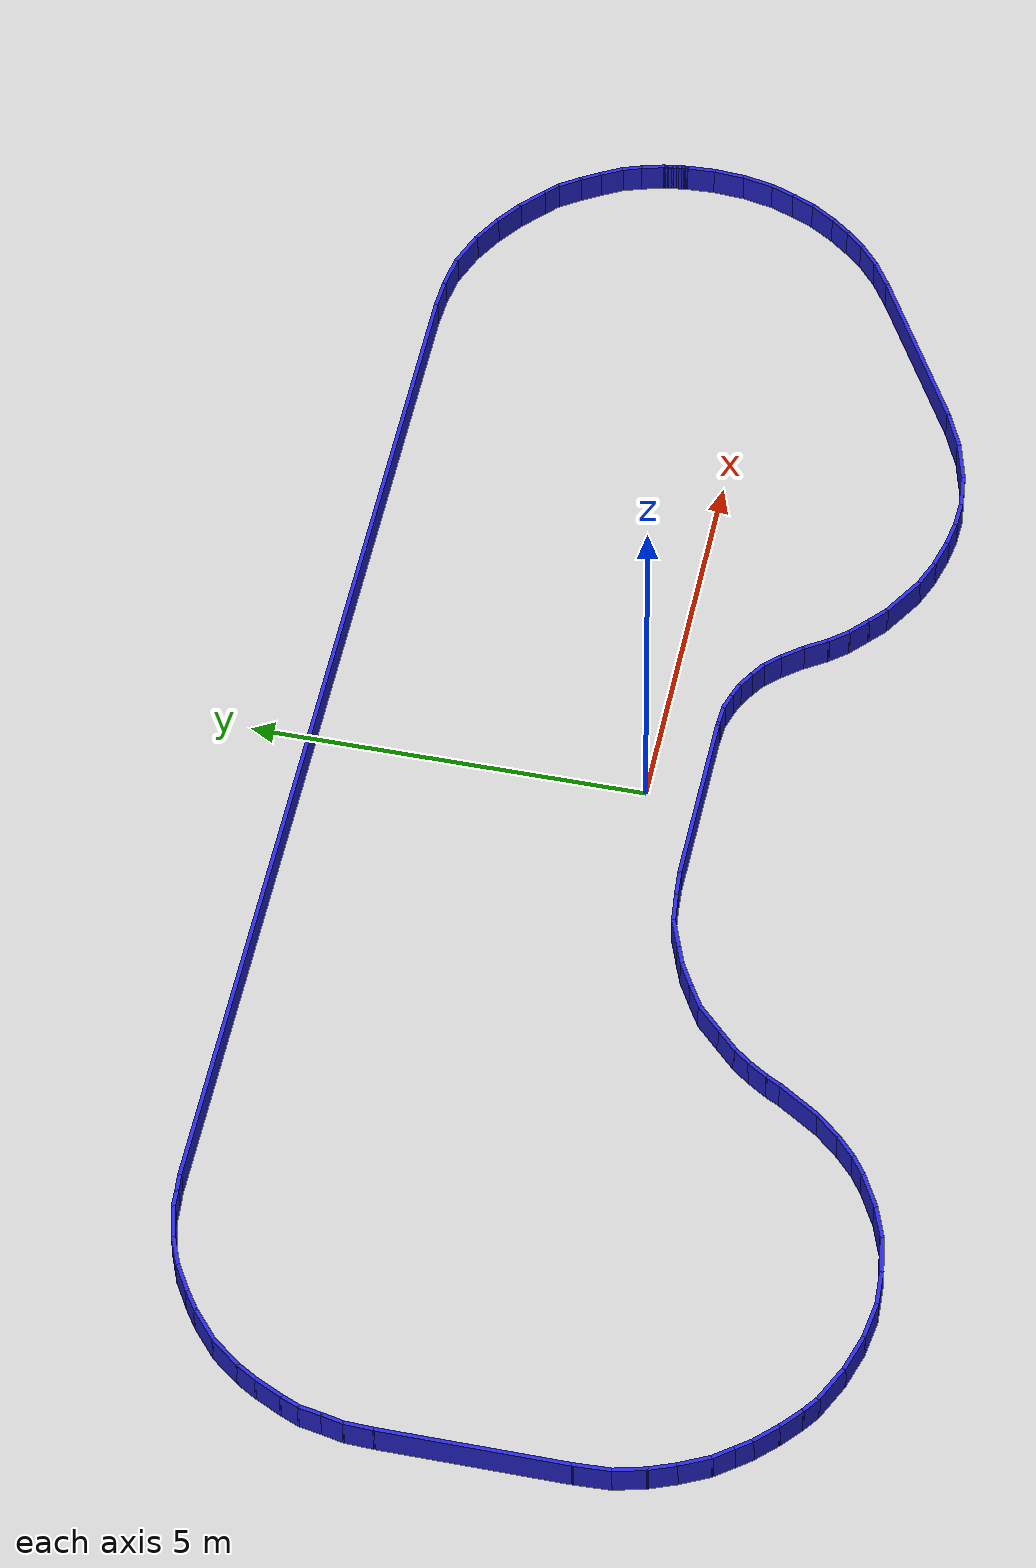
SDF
<sdf version="1.8">
 <world name="warehouse">
  <model name="ground_plane">
   <static>1</static>
   <link name="link">
    <collision name="collision">
     <geometry><plane><normal>0 0 1</normal><size>100 100</size></plane></geometry>
    </collision>
    <visual name="visual">
     <geometry><plane><normal>0 0 1</normal><size>100 100</size></plane></geometry>
     <material>
      <ambient>0.8 0.8 0.8 1</ambient>
      <diffuse>0.8 0.8 0.8 1</diffuse>
      <specular>0.8 0.8 0.8 1</specular>
     </material>
     <plugin name="__default__" filename="__default__"/>
    </visual>
   </link>
   <plugin name="__default__" filename="__default__"/>
  </model>
  <model name="inner_wall">
   <static>true</static>
   <link name="iw_0">
    <pose>-0.004094 4.195511 0.2000 0 0 -0.000068</pose>
    <collision name="iw_0_collision"><geometry><box><size>14.017840 0.05 0.4</size></box></geometry></collision>
    <visual name="iw_0_visual">
     <geometry><box><size>14.017840 0.05 0.4</size></box></geometry>
     <material>
      <ambient>0.15 0.15 0.85 1</ambient>
      <diffuse>0.15 0.15 0.85 1</diffuse>
      <specular>0.1 0.1 0.1 1</specular>
     </material>
    </visual>
   </link>
   <link name="iw_1">
    <pose>7.185618 4.182473 0.2000 0 0 -0.065733</pose>
    <collision name="iw_1_collision"><geometry><box><size>0.402410 0.05 0.4</size></box></geometry></collision>
    <visual name="iw_1_visual">
     <geometry><box><size>0.402410 0.05 0.4</size></box></geometry>
     <material>
      <ambient>0.15 0.15 0.85 1</ambient>
      <diffuse>0.15 0.15 0.85 1</diffuse>
      <specular>0.1 0.1 0.1 1</specular>
     </material>
    </visual>
   </link>
   <link name="iw_2">
    <pose>7.575829 4.137299 0.2000 0 0 -0.162114</pose>
    <collision name="iw_2_collision"><geometry><box><size>0.424137 0.05 0.4</size></box></geometry></collision>
    <visual name="iw_2_visual">
     <geometry><box><size>0.424137 0.05 0.4</size></box></geometry>
     <material>
      <ambient>0.15 0.15 0.85 1</ambient>
      <diffuse>0.15 0.15 0.85 1</diffuse>
      <specular>0.1 0.1 0.1 1</specular>
     </material>
    </visual>
   </link>
   <link name="iw_3">
    <pose>7.996682 4.019939 0.2000 0 0 -0.365513</pose>
    <collision name="iw_3_collision"><geometry><box><size>0.494192 0.05 0.4</size></box></geometry></collision>
    <visual name="iw_3_visual">
     <geometry><box><size>0.494192 0.05 0.4</size></box></geometry>
     <material>
      <ambient>0.15 0.15 0.85 1</ambient>
      <diffuse>0.15 0.15 0.85 1</diffuse>
      <specular>0.1 0.1 0.1 1</specular>
     </material>
    </visual>
   </link>
   <link name="iw_4">
    <pose>8.395945 3.832426 0.2000 0 0 -0.524014</pose>
    <collision name="iw_4_collision"><geometry><box><size>0.430778 0.05 0.4</size></box></geometry></collision>
    <visual name="iw_4_visual">
     <geometry><box><size>0.430778 0.05 0.4</size></box></geometry>
     <material>
      <ambient>0.15 0.15 0.85 1</ambient>
      <diffuse>0.15 0.15 0.85 1</diffuse>
      <specular>0.1 0.1 0.1 1</specular>
     </material>
    </visual>
   </link>
   <link name="iw_5">
    <pose>8.734194 3.612273 0.2000 0 0 -0.631706</pose>
    <collision name="iw_5_collision"><geometry><box><size>0.417561 0.05 0.4</size></box></geometry></collision>
    <visual name="iw_5_visual">
     <geometry><box><size>0.417561 0.05 0.4</size></box></geometry>
     <material>
      <ambient>0.15 0.15 0.85 1</ambient>
      <diffuse>0.15 0.15 0.85 1</diffuse>
      <specular>0.1 0.1 0.1 1</specular>
     </material>
    </visual>
   </link>
   <link name="iw_6">
    <pose>9.036279 3.364453 0.2000 0 0 -0.744156</pose>
    <collision name="iw_6_collision"><geometry><box><size>0.405136 0.05 0.4</size></box></geometry></collision>
    <visual name="iw_6_visual">
     <geometry><box><size>0.405136 0.05 0.4</size></box></geometry>
     <material>
      <ambient>0.15 0.15 0.85 1</ambient>
      <diffuse>0.15 0.15 0.85 1</diffuse>
      <specular>0.1 0.1 0.1 1</specular>
     </material>
    </visual>
   </link>
   <link name="iw_7">
    <pose>9.257812 3.157601 0.2000 0 0 -0.763305</pose>
    <collision name="iw_7_collision"><geometry><box><size>0.241075 0.05 0.4</size></box></geometry></collision>
    <visual name="iw_7_visual">
     <geometry><box><size>0.241075 0.05 0.4</size></box></geometry>
     <material>
      <ambient>0.15 0.15 0.85 1</ambient>
      <diffuse>0.15 0.15 0.85 1</diffuse>
      <specular>0.1 0.1 0.1 1</specular>
     </material>
    </visual>
   </link>
   <link name="iw_8">
    <pose>9.427230 2.946112 0.2000 0 0 -0.985360</pose>
    <collision name="iw_8_collision"><geometry><box><size>0.344121 0.05 0.4</size></box></geometry></collision>
    <visual name="iw_8_visual">
     <geometry><box><size>0.344121 0.05 0.4</size></box></geometry>
     <material>
      <ambient>0.15 0.15 0.85 1</ambient>
      <diffuse>0.15 0.15 0.85 1</diffuse>
      <specular>0.1 0.1 0.1 1</specular>
     </material>
    </visual>
   </link>
   <link name="iw_9">
    <pose>9.586295 2.692592 0.2000 0 0 -1.040067</pose>
    <collision name="iw_9_collision"><geometry><box><size>0.294680 0.05 0.4</size></box></geometry></collision>
    <visual name="iw_9_visual">
     <geometry><box><size>0.294680 0.05 0.4</size></box></geometry>
     <material>
      <ambient>0.15 0.15 0.85 1</ambient>
      <diffuse>0.15 0.15 0.85 1</diffuse>
      <specular>0.1 0.1 0.1 1</specular>
     </material>
    </visual>
   </link>
   <link name="iw_10">
    <pose>9.729502 2.438103 0.2000 0 0 -1.074367</pose>
    <collision name="iw_10_collision"><geometry><box><size>0.329436 0.05 0.4</size></box></geometry></collision>
    <visual name="iw_10_visual">
     <geometry><box><size>0.329436 0.05 0.4</size></box></geometry>
     <material>
      <ambient>0.15 0.15 0.85 1</ambient>
      <diffuse>0.15 0.15 0.85 1</diffuse>
      <specular>0.1 0.1 0.1 1</specular>
     </material>
    </visual>
   </link>
   <link name="iw_11">
    <pose>9.840582 2.190106 0.2000 0 0 -1.248472</pose>
    <collision name="iw_11_collision"><geometry><box><size>0.256067 0.05 0.4</size></box></geometry></collision>
    <visual name="iw_11_visual">
     <geometry><box><size>0.256067 0.05 0.4</size></box></geometry>
     <material>
      <ambient>0.15 0.15 0.85 1</ambient>
      <diffuse>0.15 0.15 0.85 1</diffuse>
      <specular>0.1 0.1 0.1 1</specular>
     </material>
    </visual>
   </link>
   <link name="iw_12">
    <pose>9.917293 1.934749 0.2000 0 0 -1.303176</pose>
    <collision name="iw_12_collision"><geometry><box><size>0.317390 0.05 0.4</size></box></geometry></collision>
    <visual name="iw_12_visual">
     <geometry><box><size>0.317390 0.05 0.4</size></box></geometry>
     <material>
      <ambient>0.15 0.15 0.85 1</ambient>
      <diffuse>0.15 0.15 0.85 1</diffuse>
      <specular>0.1 0.1 0.1 1</specular>
     </material>
    </visual>
   </link>
   <link name="iw_13">
    <pose>9.956977 1.788791 0.2000 0 0 -1.429344</pose>
    <collision name="iw_13_collision"><geometry><box><size>0.025163 0.05 0.4</size></box></geometry></collision>
    <visual name="iw_13_visual">
     <geometry><box><size>0.025163 0.05 0.4</size></box></geometry>
     <material>
      <ambient>0.15 0.15 0.85 1</ambient>
      <diffuse>0.15 0.15 0.85 1</diffuse>
      <specular>0.1 0.1 0.1 1</specular>
     </material>
    </visual>
   </link>
   <link name="iw_14">
    <pose>9.958351 1.779133 0.2000 0 0 -1.429539</pose>
    <collision name="iw_14_collision"><geometry><box><size>0.034347 0.05 0.4</size></box></geometry></collision>
    <visual name="iw_14_visual">
     <geometry><box><size>0.034347 0.05 0.4</size></box></geometry>
     <material>
      <ambient>0.15 0.15 0.85 1</ambient>
      <diffuse>0.15 0.15 0.85 1</diffuse>
      <specular>0.1 0.1 0.1 1</specular>
     </material>
    </visual>
   </link>
   <link name="iw_15">
    <pose>9.960894 1.761232 0.2000 0 0 -1.429793</pose>
    <collision name="iw_15_collision"><geometry><box><size>0.041816 0.05 0.4</size></box></geometry></collision>
    <visual name="iw_15_visual">
     <geometry><box><size>0.041816 0.05 0.4</size></box></geometry>
     <material>
      <ambient>0.15 0.15 0.85 1</ambient>
      <diffuse>0.15 0.15 0.85 1</diffuse>
      <specular>0.1 0.1 0.1 1</specular>
     </material>
    </visual>
   </link>
   <link name="iw_16">
    <pose>9.964360 1.736783 0.2000 0 0 -1.430106</pose>
    <collision name="iw_16_collision"><geometry><box><size>0.047570 0.05 0.4</size></box></geometry></collision>
    <visual name="iw_16_visual">
     <geometry><box><size>0.047570 0.05 0.4</size></box></geometry>
     <material>
      <ambient>0.15 0.15 0.85 1</ambient>
      <diffuse>0.15 0.15 0.85 1</diffuse>
      <specular>0.1 0.1 0.1 1</specular>
     </material>
    </visual>
   </link>
   <link name="iw_17">
    <pose>9.968503 1.707484 0.2000 0 0 -1.430496</pose>
    <collision name="iw_17_collision"><geometry><box><size>0.051611 0.05 0.4</size></box></geometry></collision>
    <visual name="iw_17_visual">
     <geometry><box><size>0.051611 0.05 0.4</size></box></geometry>
     <material>
      <ambient>0.15 0.15 0.85 1</ambient>
      <diffuse>0.15 0.15 0.85 1</diffuse>
      <specular>0.1 0.1 0.1 1</specular>
     </material>
    </visual>
   </link>
   <link name="iw_18">
    <pose>9.973078 1.675032 0.2000 0 0 -1.430995</pose>
    <collision name="iw_18_collision"><geometry><box><size>0.053936 0.05 0.4</size></box></geometry></collision>
    <visual name="iw_18_visual">
     <geometry><box><size>0.053936 0.05 0.4</size></box></geometry>
     <material>
      <ambient>0.15 0.15 0.85 1</ambient>
      <diffuse>0.15 0.15 0.85 1</diffuse>
      <specular>0.1 0.1 0.1 1</specular>
     </material>
    </visual>
   </link>
   <link name="iw_19">
    <pose>9.977838 1.641122 0.2000 0 0 -1.431655</pose>
    <collision name="iw_19_collision"><geometry><box><size>0.054548 0.05 0.4</size></box></geometry></collision>
    <visual name="iw_19_visual">
     <geometry><box><size>0.054548 0.05 0.4</size></box></geometry>
     <material>
      <ambient>0.15 0.15 0.85 1</ambient>
      <diffuse>0.15 0.15 0.85 1</diffuse>
      <specular>0.1 0.1 0.1 1</specular>
     </material>
    </visual>
   </link>
   <link name="iw_20">
    <pose>9.982538 1.607453 0.2000 0 0 -1.432570</pose>
    <collision name="iw_20_collision"><geometry><box><size>0.053445 0.05 0.4</size></box></geometry></collision>
    <visual name="iw_20_visual">
     <geometry><box><size>0.053445 0.05 0.4</size></box></geometry>
     <material>
      <ambient>0.15 0.15 0.85 1</ambient>
      <diffuse>0.15 0.15 0.85 1</diffuse>
      <specular>0.1 0.1 0.1 1</specular>
     </material>
    </visual>
   </link>
   <link name="iw_21">
    <pose>9.986931 1.575719 0.2000 0 0 -1.433919</pose>
    <collision name="iw_21_collision"><geometry><box><size>0.050627 0.05 0.4</size></box></geometry></collision>
    <visual name="iw_21_visual">
     <geometry><box><size>0.050627 0.05 0.4</size></box></geometry>
     <material>
      <ambient>0.15 0.15 0.85 1</ambient>
      <diffuse>0.15 0.15 0.85 1</diffuse>
      <specular>0.1 0.1 0.1 1</specular>
     </material>
    </visual>
   </link>
   <link name="iw_22">
    <pose>9.990773 1.547619 0.2000 0 0 -1.436109</pose>
    <collision name="iw_22_collision"><geometry><box><size>0.046096 0.05 0.4</size></box></geometry></collision>
    <visual name="iw_22_visual">
     <geometry><box><size>0.046096 0.05 0.4</size></box></geometry>
     <material>
      <ambient>0.15 0.15 0.85 1</ambient>
      <diffuse>0.15 0.15 0.85 1</diffuse>
      <specular>0.1 0.1 0.1 1</specular>
     </material>
    </visual>
   </link>
   <link name="iw_23">
    <pose>9.993817 1.524849 0.2000 0 0 -1.440285</pose>
    <collision name="iw_23_collision"><geometry><box><size>0.039850 0.05 0.4</size></box></geometry></collision>
    <visual name="iw_23_visual">
     <geometry><box><size>0.039850 0.05 0.4</size></box></geometry>
     <material>
      <ambient>0.15 0.15 0.85 1</ambient>
      <diffuse>0.15 0.15 0.85 1</diffuse>
      <specular>0.1 0.1 0.1 1</specular>
     </material>
    </visual>
   </link>
   <link name="iw_24">
    <pose>9.995817 1.509106 0.2000 0 0 -1.451382</pose>
    <collision name="iw_24_collision"><geometry><box><size>0.031891 0.05 0.4</size></box></geometry></collision>
    <visual name="iw_24_visual">
     <geometry><box><size>0.031891 0.05 0.4</size></box></geometry>
     <material>
      <ambient>0.15 0.15 0.85 1</ambient>
      <diffuse>0.15 0.15 0.85 1</diffuse>
      <specular>0.1 0.1 0.1 1</specular>
     </material>
    </visual>
   </link>
   <link name="iw_25">
    <pose>9.996870 1.499848 0.2000 0 0 -1.468349</pose>
    <collision name="iw_25_collision"><geometry><box><size>0.026746 0.05 0.4</size></box></geometry></collision>
    <visual name="iw_25_visual">
     <geometry><box><size>0.026746 0.05 0.4</size></box></geometry>
     <material>
      <ambient>0.15 0.15 0.85 1</ambient>
      <diffuse>0.15 0.15 0.85 1</diffuse>
      <specular>0.1 0.1 0.1 1</specular>
     </material>
    </visual>
   </link>
   <link name="iw_26">
    <pose>9.997503 1.493694 0.2000 0 0 -1.468349</pose>
    <collision name="iw_26_collision"><geometry><box><size>0.025625 0.05 0.4</size></box></geometry></collision>
    <visual name="iw_26_visual">
     <geometry><box><size>0.025625 0.05 0.4</size></box></geometry>
     <material>
      <ambient>0.15 0.15 0.85 1</ambient>
      <diffuse>0.15 0.15 0.85 1</diffuse>
      <specular>0.1 0.1 0.1 1</specular>
     </material>
    </visual>
   </link>
   <link name="iw_27">
    <pose>9.998026 1.488606 0.2000 0 0 -1.468349</pose>
    <collision name="iw_27_collision"><geometry><box><size>0.024605 0.05 0.4</size></box></geometry></collision>
    <visual name="iw_27_visual">
     <geometry><box><size>0.024605 0.05 0.4</size></box></geometry>
     <material>
      <ambient>0.15 0.15 0.85 1</ambient>
      <diffuse>0.15 0.15 0.85 1</diffuse>
      <specular>0.1 0.1 0.1 1</specular>
     </material>
    </visual>
   </link>
   <link name="iw_28">
    <pose>9.998450 1.484481 0.2000 0 0 -1.468349</pose>
    <collision name="iw_28_collision"><geometry><box><size>0.023688 0.05 0.4</size></box></geometry></collision>
    <visual name="iw_28_visual">
     <geometry><box><size>0.023688 0.05 0.4</size></box></geometry>
     <material>
      <ambient>0.15 0.15 0.85 1</ambient>
      <diffuse>0.15 0.15 0.85 1</diffuse>
      <specular>0.1 0.1 0.1 1</specular>
     </material>
    </visual>
   </link>
   <link name="iw_29">
    <pose>9.998785 1.481219 0.2000 0 0 -1.468349</pose>
    <collision name="iw_29_collision"><geometry><box><size>0.022872 0.05 0.4</size></box></geometry></collision>
    <visual name="iw_29_visual">
     <geometry><box><size>0.022872 0.05 0.4</size></box></geometry>
     <material>
      <ambient>0.15 0.15 0.85 1</ambient>
      <diffuse>0.15 0.15 0.85 1</diffuse>
      <specular>0.1 0.1 0.1 1</specular>
     </material>
    </visual>
   </link>
   <link name="iw_30">
    <pose>9.999042 1.478717 0.2000 0 0 -1.468349</pose>
    <collision name="iw_30_collision"><geometry><box><size>0.022158 0.05 0.4</size></box></geometry></collision>
    <visual name="iw_30_visual">
     <geometry><box><size>0.022158 0.05 0.4</size></box></geometry>
     <material>
      <ambient>0.15 0.15 0.85 1</ambient>
      <diffuse>0.15 0.15 0.85 1</diffuse>
      <specular>0.1 0.1 0.1 1</specular>
     </material>
    </visual>
   </link>
   <link name="iw_31">
    <pose>9.999232 1.476874 0.2000 0 0 -1.468349</pose>
    <collision name="iw_31_collision"><geometry><box><size>0.021546 0.05 0.4</size></box></geometry></collision>
    <visual name="iw_31_visual">
     <geometry><box><size>0.021546 0.05 0.4</size></box></geometry>
     <material>
      <ambient>0.15 0.15 0.85 1</ambient>
      <diffuse>0.15 0.15 0.85 1</diffuse>
      <specular>0.1 0.1 0.1 1</specular>
     </material>
    </visual>
   </link>
   <link name="iw_32">
    <pose>9.999364 1.475589 0.2000 0 0 -1.468349</pose>
    <collision name="iw_32_collision"><geometry><box><size>0.021037 0.05 0.4</size></box></geometry></collision>
    <visual name="iw_32_visual">
     <geometry><box><size>0.021037 0.05 0.4</size></box></geometry>
     <material>
      <ambient>0.15 0.15 0.85 1</ambient>
      <diffuse>0.15 0.15 0.85 1</diffuse>
      <specular>0.1 0.1 0.1 1</specular>
     </material>
    </visual>
   </link>
   <link name="iw_33">
    <pose>9.999449 1.474761 0.2000 0 0 -1.468349</pose>
    <collision name="iw_33_collision"><geometry><box><size>0.020629 0.05 0.4</size></box></geometry></collision>
    <visual name="iw_33_visual">
     <geometry><box><size>0.020629 0.05 0.4</size></box></geometry>
     <material>
      <ambient>0.15 0.15 0.85 1</ambient>
      <diffuse>0.15 0.15 0.85 1</diffuse>
      <specular>0.1 0.1 0.1 1</specular>
     </material>
    </visual>
   </link>
   <link name="iw_34">
    <pose>9.999498 1.474288 0.2000 0 0 -1.468349</pose>
    <collision name="iw_34_collision"><geometry><box><size>0.020323 0.05 0.4</size></box></geometry></collision>
    <visual name="iw_34_visual">
     <geometry><box><size>0.020323 0.05 0.4</size></box></geometry>
     <material>
      <ambient>0.15 0.15 0.85 1</ambient>
      <diffuse>0.15 0.15 0.85 1</diffuse>
      <specular>0.1 0.1 0.1 1</specular>
     </material>
    </visual>
   </link>
   <link name="iw_35">
    <pose>9.999520 1.474068 0.2000 0 0 -1.468349</pose>
    <collision name="iw_35_collision"><geometry><box><size>0.020119 0.05 0.4</size></box></geometry></collision>
    <visual name="iw_35_visual">
     <geometry><box><size>0.020119 0.05 0.4</size></box></geometry>
     <material>
      <ambient>0.15 0.15 0.85 1</ambient>
      <diffuse>0.15 0.15 0.85 1</diffuse>
      <specular>0.1 0.1 0.1 1</specular>
     </material>
    </visual>
   </link>
   <link name="iw_36">
    <pose>9.999527 1.474000 0.2000 0 0 -1.468349</pose>
    <collision name="iw_36_collision"><geometry><box><size>0.020017 0.05 0.4</size></box></geometry></collision>
    <visual name="iw_36_visual">
     <geometry><box><size>0.020017 0.05 0.4</size></box></geometry>
     <material>
      <ambient>0.15 0.15 0.85 1</ambient>
      <diffuse>0.15 0.15 0.85 1</diffuse>
      <specular>0.1 0.1 0.1 1</specular>
     </material>
    </visual>
   </link>
   <link name="iw_37">
    <pose>10.008326 1.299178 0.2000 0 0 -1.520509</pose>
    <collision name="iw_37_collision"><geometry><box><size>0.370070 0.05 0.4</size></box></geometry></collision>
    <visual name="iw_37_visual">
     <geometry><box><size>0.370070 0.05 0.4</size></box></geometry>
     <material>
      <ambient>0.15 0.15 0.85 1</ambient>
      <diffuse>0.15 0.15 0.85 1</diffuse>
      <specular>0.1 0.1 0.1 1</specular>
     </material>
    </visual>
   </link>
   <link name="iw_38">
    <pose>10.003062 0.921041 0.2000 0 0 -1.639853</pose>
    <collision name="iw_38_collision"><geometry><box><size>0.427618 0.05 0.4</size></box></geometry></collision>
    <visual name="iw_38_visual">
     <geometry><box><size>0.427618 0.05 0.4</size></box></geometry>
     <material>
      <ambient>0.15 0.15 0.85 1</ambient>
      <diffuse>0.15 0.15 0.85 1</diffuse>
      <specular>0.1 0.1 0.1 1</specular>
     </material>
    </visual>
   </link>
   <link name="iw_39">
    <pose>9.949377 0.520247 0.2000 0 0 -1.768813</pose>
    <collision name="iw_39_collision"><geometry><box><size>0.422813 0.05 0.4</size></box></geometry></collision>
    <visual name="iw_39_visual">
     <geometry><box><size>0.422813 0.05 0.4</size></box></geometry>
     <material>
      <ambient>0.15 0.15 0.85 1</ambient>
      <diffuse>0.15 0.15 0.85 1</diffuse>
      <specular>0.1 0.1 0.1 1</specular>
     </material>
    </visual>
   </link>
   <link name="iw_40">
    <pose>9.854057 0.172798 0.2000 0 0 -1.926387</pose>
    <collision name="iw_40_collision"><geometry><box><size>0.339974 0.05 0.4</size></box></geometry></collision>
    <visual name="iw_40_visual">
     <geometry><box><size>0.339974 0.05 0.4</size></box></geometry>
     <material>
      <ambient>0.15 0.15 0.85 1</ambient>
      <diffuse>0.15 0.15 0.85 1</diffuse>
      <specular>0.1 0.1 0.1 1</specular>
     </material>
    </visual>
   </link>
   <link name="iw_41">
    <pose>9.737126 -0.120193 0.2000 0 0 -1.975340</pose>
    <collision name="iw_41_collision"><geometry><box><size>0.331138 0.05 0.4</size></box></geometry></collision>
    <visual name="iw_41_visual">
     <geometry><box><size>0.331138 0.05 0.4</size></box></geometry>
     <material>
      <ambient>0.15 0.15 0.85 1</ambient>
      <diffuse>0.15 0.15 0.85 1</diffuse>
      <specular>0.1 0.1 0.1 1</specular>
     </material>
    </visual>
   </link>
   <link name="iw_42">
    <pose>9.580058 -0.415058 0.2000 0 0 -2.133779</pose>
    <collision name="iw_42_collision"><geometry><box><size>0.379133 0.05 0.4</size></box></geometry></collision>
    <visual name="iw_42_visual">
     <geometry><box><size>0.379133 0.05 0.4</size></box></geometry>
     <material>
      <ambient>0.15 0.15 0.85 1</ambient>
      <diffuse>0.15 0.15 0.85 1</diffuse>
      <specular>0.1 0.1 0.1 1</specular>
     </material>
    </visual>
   </link>
   <link name="iw_43">
    <pose>9.393380 -0.683811 0.2000 0 0 -2.231405</pose>
    <collision name="iw_43_collision"><geometry><box><size>0.316093 0.05 0.4</size></box></geometry></collision>
    <visual name="iw_43_visual">
     <geometry><box><size>0.316093 0.05 0.4</size></box></geometry>
     <material>
      <ambient>0.15 0.15 0.85 1</ambient>
      <diffuse>0.15 0.15 0.85 1</diffuse>
      <specular>0.1 0.1 0.1 1</specular>
     </material>
    </visual>
   </link>
   <link name="iw_44">
    <pose>9.207017 -0.908099 0.2000 0 0 -2.297787</pose>
    <collision name="iw_44_collision"><geometry><box><size>0.307449 0.05 0.4</size></box></geometry></collision>
    <visual name="iw_44_visual">
     <geometry><box><size>0.307449 0.05 0.4</size></box></geometry>
     <material>
      <ambient>0.15 0.15 0.85 1</ambient>
      <diffuse>0.15 0.15 0.85 1</diffuse>
      <specular>0.1 0.1 0.1 1</specular>
     </material>
    </visual>
   </link>
   <link name="iw_45">
    <pose>8.980075 -1.129389 0.2000 0 0 -2.427478</pose>
    <collision name="iw_45_collision"><geometry><box><size>0.367819 0.05 0.4</size></box></geometry></collision>
    <visual name="iw_45_visual">
     <geometry><box><size>0.367819 0.05 0.4</size></box></geometry>
     <material>
      <ambient>0.15 0.15 0.85 1</ambient>
      <diffuse>0.15 0.15 0.85 1</diffuse>
      <specular>0.1 0.1 0.1 1</specular>
     </material>
    </visual>
   </link>
   <link name="iw_46">
    <pose>8.679497 -1.354484 0.2000 0 0 -2.560081</pose>
    <collision name="iw_46_collision"><geometry><box><size>0.424865 0.05 0.4</size></box></geometry></collision>
    <visual name="iw_46_visual">
     <geometry><box><size>0.424865 0.05 0.4</size></box></geometry>
     <material>
      <ambient>0.15 0.15 0.85 1</ambient>
      <diffuse>0.15 0.15 0.85 1</diffuse>
      <specular>0.1 0.1 0.1 1</specular>
     </material>
    </visual>
   </link>
   <link name="iw_47">
    <pose>7.503194 -2.046811 0.2000 0 0 -2.618249</pose>
    <collision name="iw_47_collision"><geometry><box><size>2.345557 0.05 0.4</size></box></geometry></collision>
    <visual name="iw_47_visual">
     <geometry><box><size>2.345557 0.05 0.4</size></box></geometry>
     <material>
      <ambient>0.15 0.15 0.85 1</ambient>
      <diffuse>0.15 0.15 0.85 1</diffuse>
      <specular>0.1 0.1 0.1 1</specular>
     </material>
    </visual>
   </link>
   <link name="iw_48">
    <pose>6.260079 -2.737122 0.2000 0 0 -2.708244</pose>
    <collision name="iw_48_collision"><geometry><box><size>0.540009 0.05 0.4</size></box></geometry></collision>
    <visual name="iw_48_visual">
     <geometry><box><size>0.540009 0.05 0.4</size></box></geometry>
     <material>
      <ambient>0.15 0.15 0.85 1</ambient>
      <diffuse>0.15 0.15 0.85 1</diffuse>
      <specular>0.1 0.1 0.1 1</specular>
     </material>
    </visual>
   </link>
   <link name="iw_49">
    <pose>5.767170 -2.919405 0.2000 0 0 -2.864401</pose>
    <collision name="iw_49_collision"><geometry><box><size>0.554272 0.05 0.4</size></box></geometry></collision>
    <visual name="iw_49_visual">
     <geometry><box><size>0.554272 0.05 0.4</size></box></geometry>
     <material>
      <ambient>0.15 0.15 0.85 1</ambient>
      <diffuse>0.15 0.15 0.85 1</diffuse>
      <specular>0.1 0.1 0.1 1</specular>
     </material>
    </visual>
   </link>
   <link name="iw_50">
    <pose>5.290891 -3.018905 0.2000 0 0 -3.021822</pose>
    <collision name="iw_50_collision"><geometry><box><size>0.461845 0.05 0.4</size></box></geometry></collision>
    <visual name="iw_50_visual">
     <geometry><box><size>0.461845 0.05 0.4</size></box></geometry>
     <material>
      <ambient>0.15 0.15 0.85 1</ambient>
      <diffuse>0.15 0.15 0.85 1</diffuse>
      <specular>0.1 0.1 0.1 1</specular>
     </material>
    </visual>
   </link>
   <link name="iw_51">
    <pose>4.900079 -3.039057 0.2000 0 0 3.105191</pose>
    <collision name="iw_51_collision"><geometry><box><size>0.363173 0.05 0.4</size></box></geometry></collision>
    <visual name="iw_51_visual">
     <geometry><box><size>0.363173 0.05 0.4</size></box></geometry>
     <material>
      <ambient>0.15 0.15 0.85 1</ambient>
      <diffuse>0.15 0.15 0.85 1</diffuse>
      <specular>0.1 0.1 0.1 1</specular>
     </material>
    </visual>
   </link>
   <link name="iw_52">
    <pose>4.568415 -3.007249 0.2000 0 0 2.983344</pose>
    <collision name="iw_52_collision"><geometry><box><size>0.344437 0.05 0.4</size></box></geometry></collision>
    <visual name="iw_52_visual">
     <geometry><box><size>0.344437 0.05 0.4</size></box></geometry>
     <material>
      <ambient>0.15 0.15 0.85 1</ambient>
      <diffuse>0.15 0.15 0.85 1</diffuse>
      <specular>0.1 0.1 0.1 1</specular>
     </material>
    </visual>
   </link>
   <link name="iw_53">
    <pose>4.215180 -2.931847 0.2000 0 0 2.888938</pose>
    <collision name="iw_53_collision"><geometry><box><size>0.418746 0.05 0.4</size></box></geometry></collision>
    <visual name="iw_53_visual">
     <geometry><box><size>0.418746 0.05 0.4</size></box></geometry>
     <material>
      <ambient>0.15 0.15 0.85 1</ambient>
      <diffuse>0.15 0.15 0.85 1</diffuse>
      <specular>0.1 0.1 0.1 1</specular>
     </material>
    </visual>
   </link>
   <link name="iw_54">
    <pose>3.854309 -2.815849 0.2000 0 0 2.766085</pose>
    <collision name="iw_54_collision"><geometry><box><size>0.380794 0.05 0.4</size></box></geometry></collision>
    <visual name="iw_54_visual">
     <geometry><box><size>0.380794 0.05 0.4</size></box></geometry>
     <material>
      <ambient>0.15 0.15 0.85 1</ambient>
      <diffuse>0.15 0.15 0.85 1</diffuse>
      <specular>0.1 0.1 0.1 1</specular>
     </material>
    </visual>
   </link>
   <link name="iw_55">
    <pose>3.424758 -2.591108 0.2000 0 0 2.596839</pose>
    <collision name="iw_55_collision"><geometry><box><size>0.632037 0.05 0.4</size></box></geometry></collision>
    <visual name="iw_55_visual">
     <geometry><box><size>0.632037 0.05 0.4</size></box></geometry>
     <material>
      <ambient>0.15 0.15 0.85 1</ambient>
      <diffuse>0.15 0.15 0.85 1</diffuse>
      <specular>0.1 0.1 0.1 1</specular>
     </material>
    </visual>
   </link>
   <link name="iw_56">
    <pose>3.053433 -2.333931 0.2000 0 0 2.409008</pose>
    <collision name="iw_56_collision"><geometry><box><size>0.314846 0.05 0.4</size></box></geometry></collision>
    <visual name="iw_56_visual">
     <geometry><box><size>0.314846 0.05 0.4</size></box></geometry>
     <material>
      <ambient>0.15 0.15 0.85 1</ambient>
      <diffuse>0.15 0.15 0.85 1</diffuse>
      <specular>0.1 0.1 0.1 1</specular>
     </material>
    </visual>
   </link>
   <link name="iw_57">
    <pose>2.833353 -2.134756 0.2000 0 0 2.403063</pose>
    <collision name="iw_57_collision"><geometry><box><size>0.318810 0.05 0.4</size></box></geometry></collision>
    <visual name="iw_57_visual">
     <geometry><box><size>0.318810 0.05 0.4</size></box></geometry>
     <material>
      <ambient>0.15 0.15 0.85 1</ambient>
      <diffuse>0.15 0.15 0.85 1</diffuse>
      <specular>0.1 0.1 0.1 1</specular>
     </material>
    </visual>
   </link>
   <link name="iw_58">
    <pose>2.631419 -1.919529 0.2000 0 0 2.244139</pose>
    <collision name="iw_58_collision"><geometry><box><size>0.313313 0.05 0.4</size></box></geometry></collision>
    <visual name="iw_58_visual">
     <geometry><box><size>0.313313 0.05 0.4</size></box></geometry>
     <material>
      <ambient>0.15 0.15 0.85 1</ambient>
      <diffuse>0.15 0.15 0.85 1</diffuse>
      <specular>0.1 0.1 0.1 1</specular>
     </material>
    </visual>
   </link>
   <link name="iw_59">
    <pose>2.451965 -1.666557 0.2000 0 0 2.137389</pose>
    <collision name="iw_59_collision"><geometry><box><size>0.347887 0.05 0.4</size></box></geometry></collision>
    <visual name="iw_59_visual">
     <geometry><box><size>0.347887 0.05 0.4</size></box></geometry>
     <material>
      <ambient>0.15 0.15 0.85 1</ambient>
      <diffuse>0.15 0.15 0.85 1</diffuse>
      <specular>0.1 0.1 0.1 1</specular>
     </material>
    </visual>
   </link>
   <link name="iw_60">
    <pose>2.263226 -1.400192 0.2000 0 0 2.237430</pose>
    <collision name="iw_60_collision"><geometry><box><size>0.345839 0.05 0.4</size></box></geometry></collision>
    <visual name="iw_60_visual">
     <geometry><box><size>0.345839 0.05 0.4</size></box></geometry>
     <material>
      <ambient>0.15 0.15 0.85 1</ambient>
      <diffuse>0.15 0.15 0.85 1</diffuse>
      <specular>0.1 0.1 0.1 1</specular>
     </material>
    </visual>
   </link>
   <link name="iw_61">
    <pose>2.075454 -1.181319 0.2000 0 0 2.334824</pose>
    <collision name="iw_61_collision"><geometry><box><size>0.271597 0.05 0.4</size></box></geometry></collision>
    <visual name="iw_61_visual">
     <geometry><box><size>0.271597 0.05 0.4</size></box></geometry>
     <material>
      <ambient>0.15 0.15 0.85 1</ambient>
      <diffuse>0.15 0.15 0.85 1</diffuse>
      <specular>0.1 0.1 0.1 1</specular>
     </material>
    </visual>
   </link>
   <link name="iw_62">
    <pose>1.898225 -1.030750 0.2000 0 0 2.556628</pose>
    <collision name="iw_62_collision"><geometry><box><size>0.236369 0.05 0.4</size></box></geometry></collision>
    <visual name="iw_62_visual">
     <geometry><box><size>0.236369 0.05 0.4</size></box></geometry>
     <material>
      <ambient>0.15 0.15 0.85 1</ambient>
      <diffuse>0.15 0.15 0.85 1</diffuse>
      <specular>0.1 0.1 0.1 1</specular>
     </material>
    </visual>
   </link>
   <link name="iw_63">
    <pose>1.711344 -0.915935 0.2000 0 0 2.623775</pose>
    <collision name="iw_63_collision"><geometry><box><size>0.242545 0.05 0.4</size></box></geometry></collision>
    <visual name="iw_63_visual">
     <geometry><box><size>0.242545 0.05 0.4</size></box></geometry>
     <material>
      <ambient>0.15 0.15 0.85 1</ambient>
      <diffuse>0.15 0.15 0.85 1</diffuse>
      <specular>0.1 0.1 0.1 1</specular>
     </material>
    </visual>
   </link>
   <link name="iw_64">
    <pose>1.528640 -0.829092 0.2000 0 0 2.787843</pose>
    <collision name="iw_64_collision"><geometry><box><size>0.203392 0.05 0.4</size></box></geometry></collision>
    <visual name="iw_64_visual">
     <geometry><box><size>0.203392 0.05 0.4</size></box></geometry>
     <material>
      <ambient>0.15 0.15 0.85 1</ambient>
      <diffuse>0.15 0.15 0.85 1</diffuse>
      <specular>0.1 0.1 0.1 1</specular>
     </material>
    </visual>
   </link>
   <link name="iw_65">
    <pose>1.337710 -0.766046 0.2000 0 0 2.851823</pose>
    <collision name="iw_65_collision"><geometry><box><size>0.238951 0.05 0.4</size></box></geometry></collision>
    <visual name="iw_65_visual">
     <geometry><box><size>0.238951 0.05 0.4</size></box></geometry>
     <material>
      <ambient>0.15 0.15 0.85 1</ambient>
      <diffuse>0.15 0.15 0.85 1</diffuse>
      <specular>0.1 0.1 0.1 1</specular>
     </material>
    </visual>
   </link>
   <link name="iw_66">
    <pose>1.106221 -0.727253 0.2000 0 0 3.082309</pose>
    <collision name="iw_66_collision"><geometry><box><size>0.273601 0.05 0.4</size></box></geometry></collision>
    <visual name="iw_66_visual">
     <geometry><box><size>0.273601 0.05 0.4</size></box></geometry>
     <material>
      <ambient>0.15 0.15 0.85 1</ambient>
      <diffuse>0.15 0.15 0.85 1</diffuse>
      <specular>0.1 0.1 0.1 1</specular>
     </material>
    </visual>
   </link>
   <link name="iw_67">
    <pose>0.964664 -0.718237 0.2000 0 0 3.041609</pose>
    <collision name="iw_67_collision"><geometry><box><size>0.050109 0.05 0.4</size></box></geometry></collision>
    <visual name="iw_67_visual">
     <geometry><box><size>0.050109 0.05 0.4</size></box></geometry>
     <material>
      <ambient>0.15 0.15 0.85 1</ambient>
      <diffuse>0.15 0.15 0.85 1</diffuse>
      <specular>0.1 0.1 0.1 1</specular>
     </material>
    </visual>
   </link>
   <link name="iw_68">
    <pose>-0.217708 -0.712344 0.2000 0 0 3.137832</pose>
    <collision name="iw_68_collision"><geometry><box><size>2.354802 0.05 0.4</size></box></geometry></collision>
    <visual name="iw_68_visual">
     <geometry><box><size>2.354802 0.05 0.4</size></box></geometry>
     <material>
      <ambient>0.15 0.15 0.85 1</ambient>
      <diffuse>0.15 0.15 0.85 1</diffuse>
      <specular>0.1 0.1 0.1 1</specular>
     </material>
    </visual>
   </link>
   <link name="iw_69">
    <pose>-1.551559 -0.720445 0.2000 0 0 -3.066687</pose>
    <collision name="iw_69_collision"><geometry><box><size>0.353852 0.05 0.4</size></box></geometry></collision>
    <visual name="iw_69_visual">
     <geometry><box><size>0.353852 0.05 0.4</size></box></geometry>
     <material>
      <ambient>0.15 0.15 0.85 1</ambient>
      <diffuse>0.15 0.15 0.85 1</diffuse>
      <specular>0.1 0.1 0.1 1</specular>
     </material>
    </visual>
   </link>
   <link name="iw_70">
    <pose>-1.920299 -0.755120 0.2000 0 0 -3.032367</pose>
    <collision name="iw_70_collision"><geometry><box><size>0.426989 0.05 0.4</size></box></geometry></collision>
    <visual name="iw_70_visual">
     <geometry><box><size>0.426989 0.05 0.4</size></box></geometry>
     <material>
      <ambient>0.15 0.15 0.85 1</ambient>
      <diffuse>0.15 0.15 0.85 1</diffuse>
      <specular>0.1 0.1 0.1 1</specular>
     </material>
    </visual>
   </link>
   <link name="iw_71">
    <pose>-2.315423 -0.849266 0.2000 0 0 -2.784427</pose>
    <collision name="iw_71_collision"><geometry><box><size>0.431664 0.05 0.4</size></box></geometry></collision>
    <visual name="iw_71_visual">
     <geometry><box><size>0.431664 0.05 0.4</size></box></geometry>
     <material>
      <ambient>0.15 0.15 0.85 1</ambient>
      <diffuse>0.15 0.15 0.85 1</diffuse>
      <specular>0.1 0.1 0.1 1</specular>
     </material>
    </visual>
   </link>
   <link name="iw_72">
    <pose>-2.626217 -0.966513 0.2000 0 0 -2.775024</pose>
    <collision name="iw_72_collision"><geometry><box><size>0.272691 0.05 0.4</size></box></geometry></collision>
    <visual name="iw_72_visual">
     <geometry><box><size>0.272691 0.05 0.4</size></box></geometry>
     <material>
      <ambient>0.15 0.15 0.85 1</ambient>
      <diffuse>0.15 0.15 0.85 1</diffuse>
      <specular>0.1 0.1 0.1 1</specular>
     </material>
    </visual>
   </link>
   <link name="iw_73">
    <pose>-2.890150 -1.093985 0.2000 0 0 -2.628822</pose>
    <collision name="iw_73_collision"><geometry><box><size>0.355057 0.05 0.4</size></box></geometry></collision>
    <visual name="iw_73_visual">
     <geometry><box><size>0.355057 0.05 0.4</size></box></geometry>
     <material>
      <ambient>0.15 0.15 0.85 1</ambient>
      <diffuse>0.15 0.15 0.85 1</diffuse>
      <specular>0.1 0.1 0.1 1</specular>
     </material>
    </visual>
   </link>
   <link name="iw_74">
    <pose>-3.179493 -1.261768 0.2000 0 0 -2.603344</pose>
    <collision name="iw_74_collision"><geometry><box><size>0.353938 0.05 0.4</size></box></geometry></collision>
    <visual name="iw_74_visual">
     <geometry><box><size>0.353938 0.05 0.4</size></box></geometry>
     <material>
      <ambient>0.15 0.15 0.85 1</ambient>
      <diffuse>0.15 0.15 0.85 1</diffuse>
      <specular>0.1 0.1 0.1 1</specular>
     </material>
    </visual>
   </link>
   <link name="iw_75">
    <pose>-3.471737 -1.494932 0.2000 0 0 -2.360623</pose>
    <collision name="iw_75_collision"><geometry><box><size>0.439252 0.05 0.4</size></box></geometry></collision>
    <visual name="iw_75_visual">
     <geometry><box><size>0.439252 0.05 0.4</size></box></geometry>
     <material>
      <ambient>0.15 0.15 0.85 1</ambient>
      <diffuse>0.15 0.15 0.85 1</diffuse>
      <specular>0.1 0.1 0.1 1</specular>
     </material>
    </visual>
   </link>
   <link name="iw_76">
    <pose>-3.741800 -1.763685 0.2000 0 0 -2.356181</pose>
    <collision name="iw_76_collision"><geometry><box><size>0.362752 0.05 0.4</size></box></geometry></collision>
    <visual name="iw_76_visual">
     <geometry><box><size>0.362752 0.05 0.4</size></box></geometry>
     <material>
      <ambient>0.15 0.15 0.85 1</ambient>
      <diffuse>0.15 0.15 0.85 1</diffuse>
      <specular>0.1 0.1 0.1 1</specular>
     </material>
    </visual>
   </link>
   <link name="iw_77">
    <pose>-3.940948 -1.987277 0.2000 0 0 -2.221513</pose>
    <collision name="iw_77_collision"><geometry><box><size>0.277423 0.05 0.4</size></box></geometry></collision>
    <visual name="iw_77_visual">
     <geometry><box><size>0.277423 0.05 0.4</size></box></geometry>
     <material>
      <ambient>0.15 0.15 0.85 1</ambient>
      <diffuse>0.15 0.15 0.85 1</diffuse>
      <specular>0.1 0.1 0.1 1</specular>
     </material>
    </visual>
   </link>
   <link name="iw_78">
    <pose>-4.099969 -2.216278 0.2000 0 0 -2.140306</pose>
    <collision name="iw_78_collision"><geometry><box><size>0.320634 0.05 0.4</size></box></geometry></collision>
    <visual name="iw_78_visual">
     <geometry><box><size>0.320634 0.05 0.4</size></box></geometry>
     <material>
      <ambient>0.15 0.15 0.85 1</ambient>
      <diffuse>0.15 0.15 0.85 1</diffuse>
      <specular>0.1 0.1 0.1 1</specular>
     </material>
    </visual>
   </link>
   <link name="iw_79">
    <pose>-4.224702 -2.428801 0.2000 0 0 -2.041066</pose>
    <collision name="iw_79_collision"><geometry><box><size>0.212790 0.05 0.4</size></box></geometry></collision>
    <visual name="iw_79_visual">
     <geometry><box><size>0.212790 0.05 0.4</size></box></geometry>
     <material>
      <ambient>0.15 0.15 0.85 1</ambient>
      <diffuse>0.15 0.15 0.85 1</diffuse>
      <specular>0.1 0.1 0.1 1</specular>
     </material>
    </visual>
   </link>
   <link name="iw_80">
    <pose>-4.435931 -2.775071 0.2000 0 0 -2.142647</pose>
    <collision name="iw_80_collision"><geometry><box><size>0.639192 0.05 0.4</size></box></geometry></collision>
    <visual name="iw_80_visual">
     <geometry><box><size>0.639192 0.05 0.4</size></box></geometry>
     <material>
      <ambient>0.15 0.15 0.85 1</ambient>
      <diffuse>0.15 0.15 0.85 1</diffuse>
      <specular>0.1 0.1 0.1 1</specular>
     </material>
    </visual>
   </link>
   <link name="iw_81">
    <pose>-4.734474 -3.183846 0.2000 0 0 -2.293853</pose>
    <collision name="iw_81_collision"><geometry><box><size>0.415940 0.05 0.4</size></box></geometry></collision>
    <visual name="iw_81_visual">
     <geometry><box><size>0.415940 0.05 0.4</size></box></geometry>
     <material>
      <ambient>0.15 0.15 0.85 1</ambient>
      <diffuse>0.15 0.15 0.85 1</diffuse>
      <specular>0.1 0.1 0.1 1</specular>
     </material>
    </visual>
   </link>
   <link name="iw_82">
    <pose>-4.988013 -3.445352 0.2000 0 0 -2.396388</pose>
    <collision name="iw_82_collision"><geometry><box><size>0.353482 0.05 0.4</size></box></geometry></collision>
    <visual name="iw_82_visual">
     <geometry><box><size>0.353482 0.05 0.4</size></box></geometry>
     <material>
      <ambient>0.15 0.15 0.85 1</ambient>
      <diffuse>0.15 0.15 0.85 1</diffuse>
      <specular>0.1 0.1 0.1 1</specular>
     </material>
    </visual>
   </link>
   <link name="iw_83">
    <pose>-5.218706 -3.634999 0.2000 0 0 -2.525469</pose>
    <collision name="iw_83_collision"><geometry><box><size>0.285026 0.05 0.4</size></box></geometry></collision>
    <visual name="iw_83_visual">
     <geometry><box><size>0.285026 0.05 0.4</size></box></geometry>
     <material>
      <ambient>0.15 0.15 0.85 1</ambient>
      <diffuse>0.15 0.15 0.85 1</diffuse>
      <specular>0.1 0.1 0.1 1</specular>
     </material>
    </visual>
   </link>
   <link name="iw_84">
    <pose>-5.541267 -3.827949 0.2000 0 0 -2.644328</pose>
    <collision name="iw_84_collision"><geometry><box><size>0.507918 0.05 0.4</size></box></geometry></collision>
    <visual name="iw_84_visual">
     <geometry><box><size>0.507918 0.05 0.4</size></box></geometry>
     <material>
      <ambient>0.15 0.15 0.85 1</ambient>
      <diffuse>0.15 0.15 0.85 1</diffuse>
      <specular>0.1 0.1 0.1 1</specular>
     </material>
    </visual>
   </link>
   <link name="iw_85">
    <pose>-5.962580 -4.020552 0.2000 0 0 -2.788589</pose>
    <collision name="iw_85_collision"><geometry><box><size>0.460991 0.05 0.4</size></box></geometry></collision>
    <visual name="iw_85_visual">
     <geometry><box><size>0.460991 0.05 0.4</size></box></geometry>
     <material>
      <ambient>0.15 0.15 0.85 1</ambient>
      <diffuse>0.15 0.15 0.85 1</diffuse>
      <specular>0.1 0.1 0.1 1</specular>
     </material>
    </visual>
   </link>
   <link name="iw_86">
    <pose>-6.413633 -4.139225 0.2000 0 0 -2.969475</pose>
    <collision name="iw_86_collision"><geometry><box><size>0.515631 0.05 0.4</size></box></geometry></collision>
    <visual name="iw_86_visual">
     <geometry><box><size>0.515631 0.05 0.4</size></box></geometry>
     <material>
      <ambient>0.15 0.15 0.85 1</ambient>
      <diffuse>0.15 0.15 0.85 1</diffuse>
      <specular>0.1 0.1 0.1 1</specular>
     </material>
    </visual>
   </link>
   <link name="iw_87">
    <pose>-6.887291 -4.194814 0.2000 0 0 -3.084376</pose>
    <collision name="iw_87_collision"><geometry><box><size>0.479762 0.05 0.4</size></box></geometry></collision>
    <visual name="iw_87_visual">
     <geometry><box><size>0.479762 0.05 0.4</size></box></geometry>
     <material>
      <ambient>0.15 0.15 0.85 1</ambient>
      <diffuse>0.15 0.15 0.85 1</diffuse>
      <specular>0.1 0.1 0.1 1</specular>
     </material>
    </visual>
   </link>
   <link name="iw_88">
    <pose>-7.359611 -4.174341 0.2000 0 0 3.004012</pose>
    <collision name="iw_88_collision"><geometry><box><size>0.510262 0.05 0.4</size></box></geometry></collision>
    <visual name="iw_88_visual">
     <geometry><box><size>0.510262 0.05 0.4</size></box></geometry>
     <material>
      <ambient>0.15 0.15 0.85 1</ambient>
      <diffuse>0.15 0.15 0.85 1</diffuse>
      <specular>0.1 0.1 0.1 1</specular>
     </material>
    </visual>
   </link>
   <link name="iw_89">
    <pose>-7.837627 -4.070759 0.2000 0 0 2.852468</pose>
    <collision name="iw_89_collision"><geometry><box><size>0.510773 0.05 0.4</size></box></geometry></collision>
    <visual name="iw_89_visual">
     <geometry><box><size>0.510773 0.05 0.4</size></box></geometry>
     <material>
      <ambient>0.15 0.15 0.85 1</ambient>
      <diffuse>0.15 0.15 0.85 1</diffuse>
      <specular>0.1 0.1 0.1 1</specular>
     </material>
    </visual>
   </link>
   <link name="iw_90">
    <pose>-8.308043 -3.891927 0.2000 0 0 2.708106</pose>
    <collision name="iw_90_collision"><geometry><box><size>0.538376 0.05 0.4</size></box></geometry></collision>
    <visual name="iw_90_visual">
     <geometry><box><size>0.538376 0.05 0.4</size></box></geometry>
     <material>
      <ambient>0.15 0.15 0.85 1</ambient>
      <diffuse>0.15 0.15 0.85 1</diffuse>
      <specular>0.1 0.1 0.1 1</specular>
     </material>
    </visual>
   </link>
   <link name="iw_91">
    <pose>-8.646539 -3.708338 0.2000 0 0 2.515290</pose>
    <collision name="iw_91_collision"><geometry><box><size>0.274953 0.05 0.4</size></box></geometry></collision>
    <visual name="iw_91_visual">
     <geometry><box><size>0.274953 0.05 0.4</size></box></geometry>
     <material>
      <ambient>0.15 0.15 0.85 1</ambient>
      <diffuse>0.15 0.15 0.85 1</diffuse>
      <specular>0.1 0.1 0.1 1</specular>
     </material>
    </visual>
   </link>
   <link name="iw_92">
    <pose>-8.880431 -3.520892 0.2000 0 0 2.429566</pose>
    <collision name="iw_92_collision"><geometry><box><size>0.365056 0.05 0.4</size></box></geometry></collision>
    <visual name="iw_92_visual">
     <geometry><box><size>0.365056 0.05 0.4</size></box></geometry>
     <material>
      <ambient>0.15 0.15 0.85 1</ambient>
      <diffuse>0.15 0.15 0.85 1</diffuse>
      <specular>0.1 0.1 0.1 1</specular>
     </material>
    </visual>
   </link>
   <link name="iw_93">
    <pose>-9.136643 -3.281470 0.2000 0 0 2.351848</pose>
    <collision name="iw_93_collision"><geometry><box><size>0.376808 0.05 0.4</size></box></geometry></collision>
    <visual name="iw_93_visual">
     <geometry><box><size>0.376808 0.05 0.4</size></box></geometry>
     <material>
      <ambient>0.15 0.15 0.85 1</ambient>
      <diffuse>0.15 0.15 0.85 1</diffuse>
      <specular>0.1 0.1 0.1 1</specular>
     </material>
    </visual>
   </link>
   <link name="iw_94">
    <pose>-9.332401 -3.061814 0.2000 0 0 2.217307</pose>
    <collision name="iw_94_collision"><geometry><box><size>0.252922 0.05 0.4</size></box></geometry></collision>
    <visual name="iw_94_visual">
     <geometry><box><size>0.252922 0.05 0.4</size></box></geometry>
     <material>
      <ambient>0.15 0.15 0.85 1</ambient>
      <diffuse>0.15 0.15 0.85 1</diffuse>
      <specular>0.1 0.1 0.1 1</specular>
     </material>
    </visual>
   </link>
   <link name="iw_95">
    <pose>-9.491615 -2.852311 0.2000 0 0 2.223290</pose>
    <collision name="iw_95_collision"><geometry><box><size>0.313350 0.05 0.4</size></box></geometry></collision>
    <visual name="iw_95_visual">
     <geometry><box><size>0.313350 0.05 0.4</size></box></geometry>
     <material>
      <ambient>0.15 0.15 0.85 1</ambient>
      <diffuse>0.15 0.15 0.85 1</diffuse>
      <specular>0.1 0.1 0.1 1</specular>
     </material>
    </visual>
   </link>
   <link name="iw_96">
    <pose>-9.670337 -2.552016 0.2000 0 0 2.024775</pose>
    <collision name="iw_96_collision"><geometry><box><size>0.428922 0.05 0.4</size></box></geometry></collision>
    <visual name="iw_96_visual">
     <geometry><box><size>0.428922 0.05 0.4</size></box></geometry>
     <material>
      <ambient>0.15 0.15 0.85 1</ambient>
      <diffuse>0.15 0.15 0.85 1</diffuse>
      <specular>0.1 0.1 0.1 1</specular>
     </material>
    </visual>
   </link>
   <link name="iw_97">
    <pose>-9.823786 -2.202705 0.2000 0 0 1.938534</pose>
    <collision name="iw_97_collision"><geometry><box><size>0.374843 0.05 0.4</size></box></geometry></collision>
    <visual name="iw_97_visual">
     <geometry><box><size>0.374843 0.05 0.4</size></box></geometry>
     <material>
      <ambient>0.15 0.15 0.85 1</ambient>
      <diffuse>0.15 0.15 0.85 1</diffuse>
      <specular>0.1 0.1 0.1 1</specular>
     </material>
    </visual>
   </link>
   <link name="iw_98">
    <pose>-9.937036 -1.841470 0.2000 0 0 1.818406</pose>
    <collision name="iw_98_collision"><geometry><box><size>0.423662 0.05 0.4</size></box></geometry></collision>
    <visual name="iw_98_visual">
     <geometry><box><size>0.423662 0.05 0.4</size></box></geometry>
     <material>
      <ambient>0.15 0.15 0.85 1</ambient>
      <diffuse>0.15 0.15 0.85 1</diffuse>
      <specular>0.1 0.1 0.1 1</specular>
     </material>
    </visual>
   </link>
   <link name="iw_99">
    <pose>-9.997049 -1.416472 0.2000 0 0 1.616755</pose>
    <collision name="iw_99_collision"><geometry><box><size>0.479130 0.05 0.4</size></box></geometry></collision>
    <visual name="iw_99_visual">
     <geometry><box><size>0.479130 0.05 0.4</size></box></geometry>
     <material>
      <ambient>0.15 0.15 0.85 1</ambient>
      <diffuse>0.15 0.15 0.85 1</diffuse>
      <specular>0.1 0.1 0.1 1</specular>
     </material>
    </visual>
   </link>
   <link name="iw_100">
    <pose>-10.006461 -0.015948 0.2000 0 0 1.569827</pose>
    <collision name="iw_100_collision"><geometry><box><size>2.362403 0.05 0.4</size></box></geometry></collision>
    <visual name="iw_100_visual">
     <geometry><box><size>2.362403 0.05 0.4</size></box></geometry>
     <material>
      <ambient>0.15 0.15 0.85 1</ambient>
      <diffuse>0.15 0.15 0.85 1</diffuse>
      <specular>0.1 0.1 0.1 1</specular>
     </material>
    </visual>
   </link>
   <link name="iw_101">
    <pose>-9.998681 1.337378 0.2000 0 0 1.534325</pose>
    <collision name="iw_101_collision"><geometry><box><size>0.384494 0.05 0.4</size></box></geometry></collision>
    <visual name="iw_101_visual">
     <geometry><box><size>0.384494 0.05 0.4</size></box></geometry>
     <material>
      <ambient>0.15 0.15 0.85 1</ambient>
      <diffuse>0.15 0.15 0.85 1</diffuse>
      <specular>0.1 0.1 0.1 1</specular>
     </material>
    </visual>
   </link>
   <link name="iw_102">
    <pose>-9.961829 1.657511 0.2000 0 0 1.355315</pose>
    <collision name="iw_102_collision"><geometry><box><size>0.302548 0.05 0.4</size></box></geometry></collision>
    <visual name="iw_102_visual">
     <geometry><box><size>0.302548 0.05 0.4</size></box></geometry>
     <material>
      <ambient>0.15 0.15 0.85 1</ambient>
      <diffuse>0.15 0.15 0.85 1</diffuse>
      <specular>0.1 0.1 0.1 1</specular>
     </material>
    </visual>
   </link>
   <link name="iw_103">
    <pose>-9.905343 1.935887 0.2000 0 0 1.385729</pose>
    <collision name="iw_103_collision"><geometry><box><size>0.305615 0.05 0.4</size></box></geometry></collision>
    <visual name="iw_103_visual">
     <geometry><box><size>0.305615 0.05 0.4</size></box></geometry>
     <material>
      <ambient>0.15 0.15 0.85 1</ambient>
      <diffuse>0.15 0.15 0.85 1</diffuse>
      <specular>0.1 0.1 0.1 1</specular>
     </material>
    </visual>
   </link>
   <link name="iw_104">
    <pose>-9.829748 2.192908 0.2000 0 0 1.170818</pose>
    <collision name="iw_104_collision"><geometry><box><size>0.273296 0.05 0.4</size></box></geometry></collision>
    <visual name="iw_104_visual">
     <geometry><box><size>0.273296 0.05 0.4</size></box></geometry>
     <material>
      <ambient>0.15 0.15 0.85 1</ambient>
      <diffuse>0.15 0.15 0.85 1</diffuse>
      <specular>0.1 0.1 0.1 1</specular>
     </material>
    </visual>
   </link>
   <link name="iw_105">
    <pose>-9.697036 2.477714 0.2000 0 0 1.110396</pose>
    <collision name="iw_105_collision"><geometry><box><size>0.395397 0.05 0.4</size></box></geometry></collision>
    <visual name="iw_105_visual">
     <geometry><box><size>0.395397 0.05 0.4</size></box></geometry>
     <material>
      <ambient>0.15 0.15 0.85 1</ambient>
      <diffuse>0.15 0.15 0.85 1</diffuse>
      <specular>0.1 0.1 0.1 1</specular>
     </material>
    </visual>
   </link>
   <link name="iw_106">
    <pose>-9.537915 2.772794 0.2000 0 0 1.032875</pose>
    <collision name="iw_106_collision"><geometry><box><size>0.315597 0.05 0.4</size></box></geometry></collision>
    <visual name="iw_106_visual">
     <geometry><box><size>0.315597 0.05 0.4</size></box></geometry>
     <material>
      <ambient>0.15 0.15 0.85 1</ambient>
      <diffuse>0.15 0.15 0.85 1</diffuse>
      <specular>0.1 0.1 0.1 1</specular>
     </material>
    </visual>
   </link>
   <link name="iw_107">
    <pose>-9.321544 3.076863 0.2000 0 0 0.899743</pose>
    <collision name="iw_107_collision"><geometry><box><size>0.472378 0.05 0.4</size></box></geometry></collision>
    <visual name="iw_107_visual">
     <geometry><box><size>0.472378 0.05 0.4</size></box></geometry>
     <material>
      <ambient>0.15 0.15 0.85 1</ambient>
      <diffuse>0.15 0.15 0.85 1</diffuse>
      <specular>0.1 0.1 0.1 1</specular>
     </material>
    </visual>
   </link>
   <link name="iw_108">
    <pose>-8.999618 3.407406 0.2000 0 0 0.702285</pose>
    <collision name="iw_108_collision"><geometry><box><size>0.494944 0.05 0.4</size></box></geometry></collision>
    <visual name="iw_108_visual">
     <geometry><box><size>0.494944 0.05 0.4</size></box></geometry>
     <material>
      <ambient>0.15 0.15 0.85 1</ambient>
      <diffuse>0.15 0.15 0.85 1</diffuse>
      <specular>0.1 0.1 0.1 1</specular>
     </material>
    </visual>
   </link>
   <link name="iw_109">
    <pose>-8.697569 3.641352 0.2000 0 0 0.588198</pose>
    <collision name="iw_109_collision"><geometry><box><size>0.310334 0.05 0.4</size></box></geometry></collision>
    <visual name="iw_109_visual">
     <geometry><box><size>0.310334 0.05 0.4</size></box></geometry>
     <material>
      <ambient>0.15 0.15 0.85 1</ambient>
      <diffuse>0.15 0.15 0.85 1</diffuse>
      <specular>0.1 0.1 0.1 1</specular>
     </material>
    </visual>
   </link>
   <link name="iw_110">
    <pose>-8.404426 3.822048 0.2000 0 0 0.526332</pose>
    <collision name="iw_110_collision"><geometry><box><size>0.418708 0.05 0.4</size></box></geometry></collision>
    <visual name="iw_110_visual">
     <geometry><box><size>0.418708 0.05 0.4</size></box></geometry>
     <material>
      <ambient>0.15 0.15 0.85 1</ambient>
      <diffuse>0.15 0.15 0.85 1</diffuse>
      <specular>0.1 0.1 0.1 1</specular>
     </material>
    </visual>
   </link>
   <link name="iw_111">
    <pose>-8.057482 3.988955 0.2000 0 0 0.365254</pose>
    <collision name="iw_111_collision"><geometry><box><size>0.393802 0.05 0.4</size></box></geometry></collision>
    <visual name="iw_111_visual">
     <geometry><box><size>0.393802 0.05 0.4</size></box></geometry>
     <material>
      <ambient>0.15 0.15 0.85 1</ambient>
      <diffuse>0.15 0.15 0.85 1</diffuse>
      <specular>0.1 0.1 0.1 1</specular>
     </material>
    </visual>
   </link>
   <link name="iw_112">
    <pose>-7.667269 4.109284 0.2000 0 0 0.243497</pose>
    <collision name="iw_112_collision"><geometry><box><size>0.464391 0.05 0.4</size></box></geometry></collision>
    <visual name="iw_112_visual">
     <geometry><box><size>0.464391 0.05 0.4</size></box></geometry>
     <material>
      <ambient>0.15 0.15 0.85 1</ambient>
      <diffuse>0.15 0.15 0.85 1</diffuse>
      <specular>0.1 0.1 0.1 1</specular>
     </material>
    </visual>
   </link>
   <link name="iw_113">
    <pose>-7.338575 4.169813 0.2000 0 0 0.061462</pose>
    <collision name="iw_113_collision"><geometry><box><size>0.246533 0.05 0.4</size></box></geometry></collision>
    <visual name="iw_113_visual">
     <geometry><box><size>0.246533 0.05 0.4</size></box></geometry>
     <material>
      <ambient>0.15 0.15 0.85 1</ambient>
      <diffuse>0.15 0.15 0.85 1</diffuse>
      <specular>0.1 0.1 0.1 1</specular>
     </material>
    </visual>
   </link>
   <link name="iw_114">
    <pose>-7.114268 4.186380 0.2000 0 0 0.086168</pose>
    <collision name="iw_114_collision"><geometry><box><size>0.243336 0.05 0.4</size></box></geometry></collision>
    <visual name="iw_114_visual">
     <geometry><box><size>0.243336 0.05 0.4</size></box></geometry>
     <material>
      <ambient>0.15 0.15 0.85 1</ambient>
      <diffuse>0.15 0.15 0.85 1</diffuse>
      <specular>0.1 0.1 0.1 1</specular>
     </material>
    </visual>
   </link>
  </model>
 </world>
</sdf>
